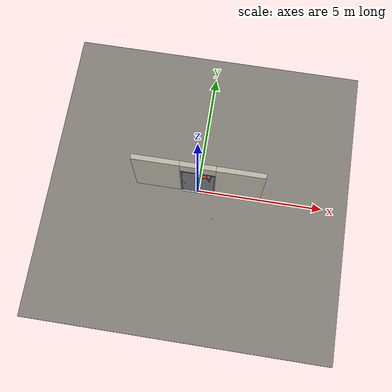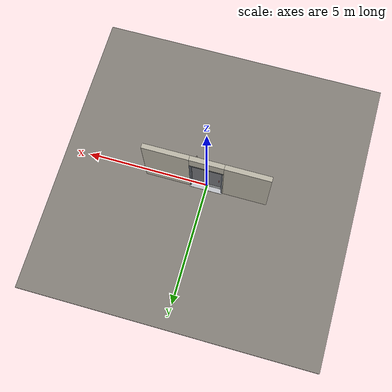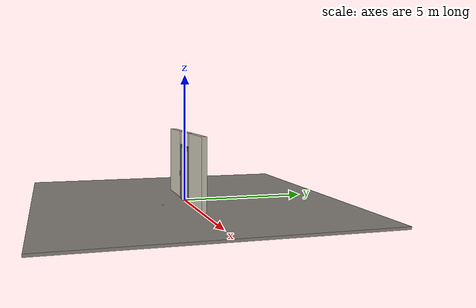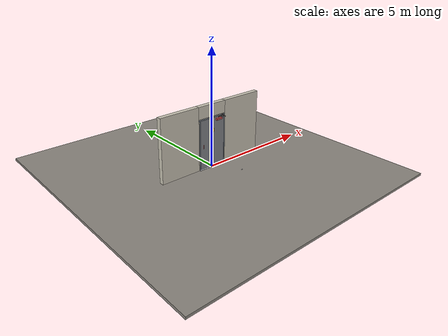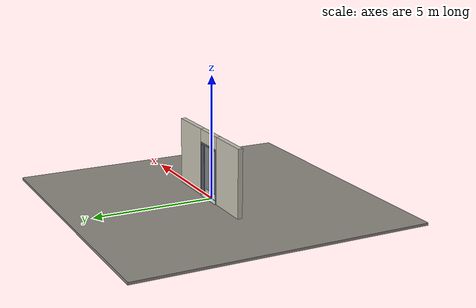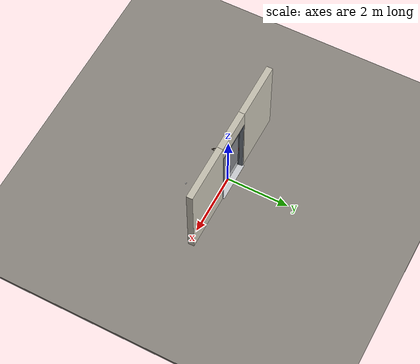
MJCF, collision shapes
<?xml version="1.0" ?>
<mujoco model="db0307_swing_single_full">
  <compiler angle="radian" meshdir="../../hardware" texturedir="../../textures" autolimits="true" inertiafromgeom="false"/>
  <option timestep="0.002" integrator="implicitfast" cone="elliptic" impratio="10" noslip_iterations="3">
    <flag multiccd="enable"/>
  </option>
  <size memory="16M"/>
  <default>
    <geom condim="4" solref="0.005 1" solimp="0.95 0.99 0.001"/>
    <joint solreflimit="0.005 1" solimplimit="0.95 0.99 0.001"/>
    <tendon solreflimit="0.005 1"/>
    <equality solref="0.002 1"/>
  </default>
  <visual>
    <headlight ambient="0.4 0.4 0.4" diffuse="0.7 0.7 0.7" specular="0.2 0.2 0.2"/>
    <quality shadowsize="4096"/>
    <map znear="0.01" zfar="60"/>
  </visual>
  <asset>
    <mesh name="closer_body_fdc4667657" file="closer_body_fdc4667657.obj"/>
    <mesh name="hinge_e22b26c0c1" file="hinge_e22b26c0c1.obj"/>
    <mesh name="hinge_jamb_e1d088f8dc" file="hinge_jamb_e1d088f8dc.obj"/>
    <mesh name="pull_1e5d69a91a" file="pull_1e5d69a91a.obj"/>
    <material name="mat_floor" rgba="0.55 0.53 0.5 1" specular="0.2" shininess="0.15" reflectance="0"/>
    <material name="mat_wall" rgba="0.78 0.76 0.7 1" specular="0.2" shininess="0.1" reflectance="0"/>
    <material name="mat_leaf" rgba="0.5 0.51 0.53 1" specular="0.23" shininess="0.63" reflectance="0.02"/>
    <material name="mat_hinge" rgba="0.65 0.66 0.68 1" specular="0.74" shininess="0.5" reflectance="0.36"/>
    <material name="mat_op_stainless" rgba="0.75 0.76 0.77 1" specular="0.8" shininess="0.65" reflectance="0.4"/>
    <material name="mat_frame" rgba="0.45 0.48 0.52 1" specular="0.32" shininess="0.6" reflectance="0.08"/>
    <material name="mat_seal" rgba="0.1 0.1 0.1 1" specular="0.2" shininess="0.1" reflectance="0"/>
    <material name="mat_threshold" rgba="0.8 0.81 0.83 1" specular="0.8" shininess="0.6" reflectance="0.4"/>
    <material name="mat_closer" rgba="0.22 0.17 0.13 1" specular="0.8" shininess="0.6" reflectance="0.4"/>
    <material name="mat_kick" rgba="0.75 0.76 0.77 1" specular="0.8" shininess="0.65" reflectance="0.4"/>
    <material name="mat_placard" rgba="0.95 0.75 0.05 1" specular="0.2" shininess="0.5" reflectance="0"/>
    <material name="mat_stop" rgba="0.9 0.9 0.92 1" specular="0.8" shininess="0.9" reflectance="0.4"/>
    <texture name="skybox" type="skybox" builtin="gradient" rgb1="0.6 0.7 0.85" rgb2="0.9 0.92 0.95" width="256" height="256"/>
  </asset>
  <worldbody>
    <light name="sun" pos="1.5 -2.5 4" dir="-0.3 0.5 -0.8" directional="true" diffuse="0.8 0.8 0.8" specular="0.3 0.3 0.3" castshadow="true"/>
    <light name="fill" pos="-1.5 2.5 3" dir="0.3 -0.5 -0.7" directional="true" diffuse="0.35 0.35 0.4" castshadow="false"/>
    <camera name="robot_view" pos="0 -2.566812 1.812087" xyaxes="1 0 0 0 0.26963 0.962964" fovy="52"/>
    <camera name="far_view" pos="0 2.708813 1.812087" xyaxes="-1 0 0 0 -0.26963 0.962964" fovy="52"/>
    <camera name="iso" pos="-2.004737 -2.144762 2.234138" xyaxes="0.741536 -0.670913 0 0.242917 0.268487 0.932151" fovy="46"/>
    <camera name="detail_handle" pos="-0.324 -0.882 1.32" xyaxes="0.97561 0.219512 0 -0.070934 0.315262 0.94635" fovy="38"/>
    <geom name="floor" type="box" size="6 6 0.05" pos="0 0 -0.05" material="mat_floor" group="0" contype="1" conaffinity="1" friction="0.8 0.005 0.0001" density="2400"/>
    <geom name="wall_left" type="box" size="0.9035 0.1 1.3735" pos="-1.5965 0.071 1.3735" material="mat_wall" group="0" contype="1" conaffinity="1" friction="0.6 0.005 0.0001" density="800"/>
    <geom name="wall_right" type="box" size="0.9185 0.1 1.3735" pos="1.5815 0.071 1.3735" material="mat_wall" group="0" contype="1" conaffinity="1" friction="0.6 0.005 0.0001" density="800"/>
    <geom name="wall_header" type="box" size="0.678 0.1 0.26" pos="-0.015 0.071 2.487" material="mat_wall" group="0" contype="1" conaffinity="1" friction="0.6 0.005 0.0001" density="800"/>
    <geom name="hinge_0_jamb" type="mesh" mesh="hinge_jamb_e1d088f8dc" pos="0.61 -0.029 0.259" quat="0 0 1 0" material="mat_hinge" group="1" contype="0" conaffinity="0" density="7850"/>
    <geom name="hinge_1_jamb" type="mesh" mesh="hinge_jamb_e1d088f8dc" pos="0.61 -0.029 1.076" quat="0 0 1 0" material="mat_hinge" group="1" contype="0" conaffinity="0" density="7850"/>
    <geom name="hinge_2_jamb" type="mesh" mesh="hinge_jamb_e1d088f8dc" pos="0.61 -0.029 1.963" quat="0 0 1 0" material="mat_hinge" group="1" contype="0" conaffinity="0" density="7850"/>
    <geom name="jamb_hinge" type="box" size="0.025 0.1 1.0735" pos="0.638 0.071 1.0735" material="mat_frame" group="0" contype="1" conaffinity="1" friction="0.6 0.005 0.0001" density="300"/>
    <geom name="jamb_strike" type="box" size="0.025 0.1 1.0735" pos="-0.638 0.071 1.0735" material="mat_frame" group="0" contype="1" conaffinity="1" friction="0.6 0.005 0.0001" density="300"/>
    <geom name="stud_strike" type="box" size="0.015 0.1 1.0735" pos="-0.678 0.071 1.0735" material="mat_wall" group="0" contype="1" conaffinity="1" friction="0.6 0.005 0.0001" density="500"/>
    <geom name="jamb_head" type="box" size="0.678 0.1 0.025" pos="-0.015 0.071 2.172" material="mat_frame" group="0" contype="1" conaffinity="1" friction="0.6 0.005 0.0001" density="300"/>
    <geom name="head_stud" type="box" size="0.678 0.1 0.015" pos="-0.015 0.071 2.212" material="mat_wall" group="0" contype="1" conaffinity="1" friction="0.6 0.005 0.0001" density="500"/>
    <geom name="stop_hinge" type="box" size="0.0055 0.016 1.0735" pos="0.6075 0.0385 1.0735" material="mat_frame" group="0" contype="1" conaffinity="1" friction="0.6 0.005 0.0001" density="300"/>
    <geom name="stop_strike" type="box" size="0.0055 0.016 1.0735" pos="-0.6075 0.0385 1.0735" material="mat_frame" group="0" contype="1" conaffinity="1" friction="0.6 0.005 0.0001" density="300"/>
    <geom name="stop_head" type="box" size="0.613 0.016 0.0055" pos="0 0.0385 2.1415" material="mat_frame" group="0" contype="1" conaffinity="1" friction="0.6 0.005 0.0001" density="300"/>
    <geom name="seal_hinge" type="box" size="0.004 0.003 1.0735" pos="0.61 0.025 1.0735" material="mat_seal" group="1" contype="0" conaffinity="0" density="1100"/>
    <geom name="seal_strike" type="box" size="0.004 0.003 1.0735" pos="-0.61 0.025 1.0735" material="mat_seal" group="1" contype="0" conaffinity="0" density="1100"/>
    <geom name="seal_head" type="box" size="0.593 0.003 0.008" pos="0 0.025 2.135" material="mat_seal" group="1" contype="0" conaffinity="0" density="1100"/>
    <geom name="threshold" type="box" size="0.663 0.15 0.004" pos="0 0.071 0.004" material="mat_threshold" group="0" contype="1" conaffinity="1" friction="0.6 0.005 0.0001" density="2700"/>
    <geom name="closer_bracket" type="box" size="0.03 0.012 0.014" pos="0.513 -0.041 2.177" material="mat_closer" group="1" contype="0" conaffinity="0" density="2700"/>
    <geom name="floor_stop_dome" type="sphere" size="0.025" pos="0.72023 -1.059464 0" material="mat_stop" group="0" contype="1" conaffinity="1" friction="0.6 0.005 0.0001" density="7000"/>
    <site name="approach_point" pos="0 -1.5 0" quat="1 0 0 0" size="0.05" rgba="0.2 0.9 0.2 0.5" group="4"/>
    <site name="goal_point" pos="0 1.5 0" quat="1 0 0 0" size="0.05" rgba="0.2 0.9 0.2 0.5" group="4"/>
    <site name="door_plane_center" pos="0 0 1.0735" quat="1 0 0 0" size="0.02" rgba="0.2 0.9 0.2 0.5" group="4"/>
    <body name="leaf" pos="0.613 0 0">
      <inertial pos="-0.557995 -0.011775 1.206849" mass="70.227221" quat="0.456864 0.477732 0.531976 -0.529197" diaginertia="8.097902988 34.327421336 42.313726639"/>
      <joint name="leaf_hinge" type="hinge" axis="0 0 1" pos="-0.003 -0.029 0" limited="true" range="0 1.658063" solreflimit="0.02 1" damping="12.850995" frictionloss="2.087933" stiffness="16.647607" springref="-2.66705" armature="0.02"/>
      <geom name="leaf_slab" type="box" size="0.6095 0.022 1.067" pos="-0.6125 0 1.076" material="mat_leaf" group="0" contype="1" conaffinity="1" friction="0.42 0.005 0.0001" density="1"/>
      <geom name="hinge_0" type="mesh" mesh="hinge_e22b26c0c1" pos="-0.003 -0.029 0.259" quat="0 0 1 0" material="mat_hinge" group="1" contype="0" conaffinity="0" density="7850"/>
      <geom name="hinge_1" type="mesh" mesh="hinge_e22b26c0c1" pos="-0.003 -0.029 1.076" quat="0 0 1 0" material="mat_hinge" group="1" contype="0" conaffinity="0" density="7850"/>
      <geom name="hinge_2" type="mesh" mesh="hinge_e22b26c0c1" pos="-0.003 -0.029 1.963" quat="0 0 1 0" material="mat_hinge" group="1" contype="0" conaffinity="0" density="7850"/>
      <geom name="leaf_pull_n" type="mesh" mesh="pull_1e5d69a91a" pos="-1.117 -0.022 1.04" quat="0 0 -0.707107 0.707107" material="mat_op_stainless" group="1" contype="0" conaffinity="0" density="3000"/>
      <geom name="leaf_pull_col_n" type="capsule" size="0.0095 0.08" pos="-1.117 -0.082 1.04" material="mat_op_stainless" group="3" contype="1" conaffinity="1" rgba="0.8 0.3 0.3 0.25" friction="0.7 0.01 0.0001" density="3000"/>
      <geom name="leaf_pull_p" type="mesh" mesh="pull_1e5d69a91a" pos="-1.117 0.022 1.04" quat="0 0 0.707107 0.707107" material="mat_op_stainless" group="1" contype="0" conaffinity="0" density="3000"/>
      <geom name="leaf_pull_col_p" type="capsule" size="0.0095 0.08" pos="-1.117 0.082 1.04" material="mat_op_stainless" group="3" contype="1" conaffinity="1" rgba="0.8 0.3 0.3 0.25" friction="0.7 0.01 0.0001" density="3000"/>
      <geom name="closer_body" type="mesh" mesh="closer_body_fdc4667657" pos="-0.3 -0.022 2.054" quat="0 0 -0.707107 0.707107" material="mat_closer" group="1" contype="0" conaffinity="0" density="2000"/>
      <geom name="closer_body_col" type="box" size="0.145 0.05 0.035" pos="-0.3 -0.072 2.054" material="mat_closer" group="3" contype="1" conaffinity="1" rgba="0.8 0.3 0.3 0.25" friction="0.6 0.005 0.0001" density="2000"/>
      <geom name="closer_pinion_shaft" type="cylinder" size="0.008 0.0615" pos="-0.3 -0.072 2.1155" material="mat_closer" group="1" contype="0" conaffinity="0" density="2700"/>
      <geom name="kick_plate_p" type="box" size="0.5795 0.0008 0.125" pos="-0.6125 0.0228 0.144" material="mat_kick" group="2" contype="0" conaffinity="0" density="7900"/>
      <geom name="warning_placard" type="box" size="0.11 0.001 0.08" pos="-0.6125 -0.023 1.6095" material="mat_placard" group="2" contype="0" conaffinity="0" density="1000"/>
      <site name="leaf_pull_grip_n" pos="-1.117 -0.082 1.04" quat="1 0 0 0" size="0.012" rgba="0.2 0.9 0.2 0.5" group="4"/>
      <site name="leaf_pull_grip_p" pos="-1.117 0.082 1.04" quat="1 0 0 0" size="0.012" rgba="0.2 0.9 0.2 0.5" group="4"/>
      <site name="leaf_edge_mid" pos="-1.222 0 1.067" quat="1 0 0 0" size="0.02" rgba="0.2 0.9 0.2 0.5" group="4"/>
      <body name="closer_arm_main" pos="-0.3 -0.072 2.177" quat="0.890947 0 0 -0.454107">
        <inertial pos="0.14 0 0" mass="0.12096" quat="1 0 0 0" diaginertia="0.000003588 0.00079128 0.000792852"/>
        <joint name="closer_pinion" type="hinge" axis="0 0 1" limited="false" damping="0.01" armature="0.002"/>
        <geom name="closer_arm_main_geom" type="box" size="0.14 0.008 0.005" pos="0.14 0 0" material="mat_closer" group="1" contype="0" conaffinity="0" density="2700"/>
        <body name="closer_arm_fore" pos="0.28 0 0" quat="0.373215 0 0 0.927745">
          <inertial pos="0.128088 0 0" mass="0.076531" quat="1 0 0 0" diaginertia="0.000001771 0.000437665 0.000438201"/>
          <joint name="closer_elbow" type="hinge" axis="0 0 1" limited="false" damping="0.01" armature="0.002"/>
          <geom name="closer_arm_fore_geom" type="box" size="0.1125 0.007 0.004" pos="0.1125 0 0" material="mat_closer" group="1" contype="0" conaffinity="0" density="2700"/>
          <geom name="closer_fore_neck" type="box" size="0.0175 0.003 0.003" pos="0.2425 0 0" material="mat_closer" group="1" contype="0" conaffinity="0" density="2700"/>
          <geom name="closer_fore_pivot" type="cylinder" size="0.005 0.012" pos="0.26 0 0" material="mat_closer" group="1" contype="0" conaffinity="0" density="2700"/>
        </body>
      </body>
    </body>
  </worldbody>
  <equality>
    <connect name="closer_arm_connect" body1="closer_arm_fore" body2="world" anchor="0.26 0 0" active="true"/>
  </equality>
  <contact>
    <exclude body1="closer_arm_main" body2="leaf"/>
    <exclude body1="closer_arm_fore" body2="leaf"/>
    <exclude body1="closer_arm_main" body2="closer_arm_fore"/>
  </contact>
  <sensor>
    <jointpos name="leaf_hinge_pos" joint="leaf_hinge"/>
    <jointvel name="leaf_hinge_vel" joint="leaf_hinge"/>
  </sensor>
</mujoco>
